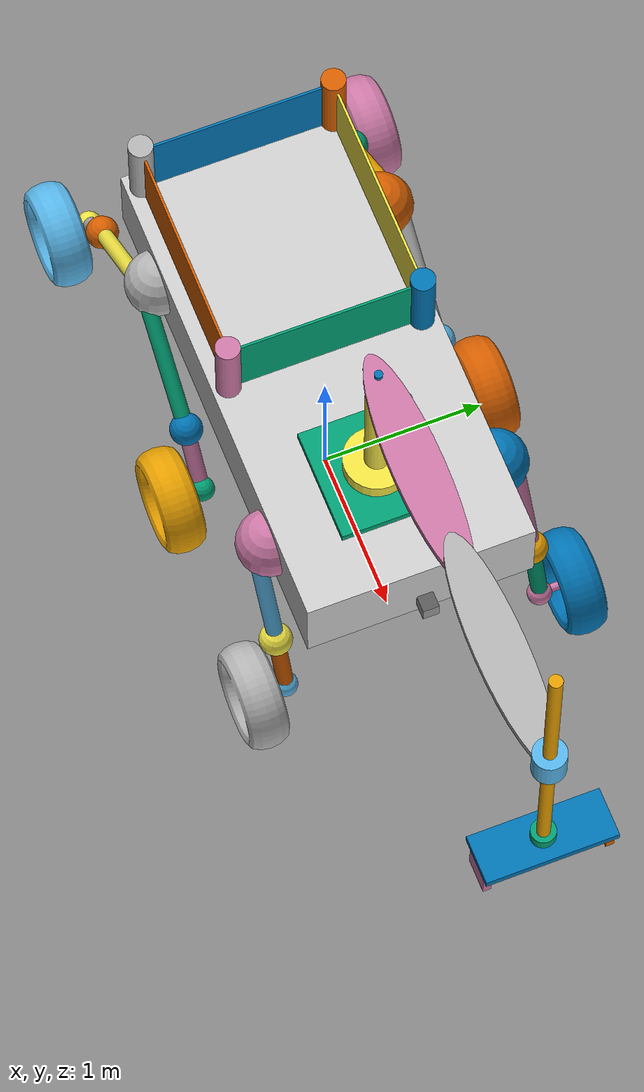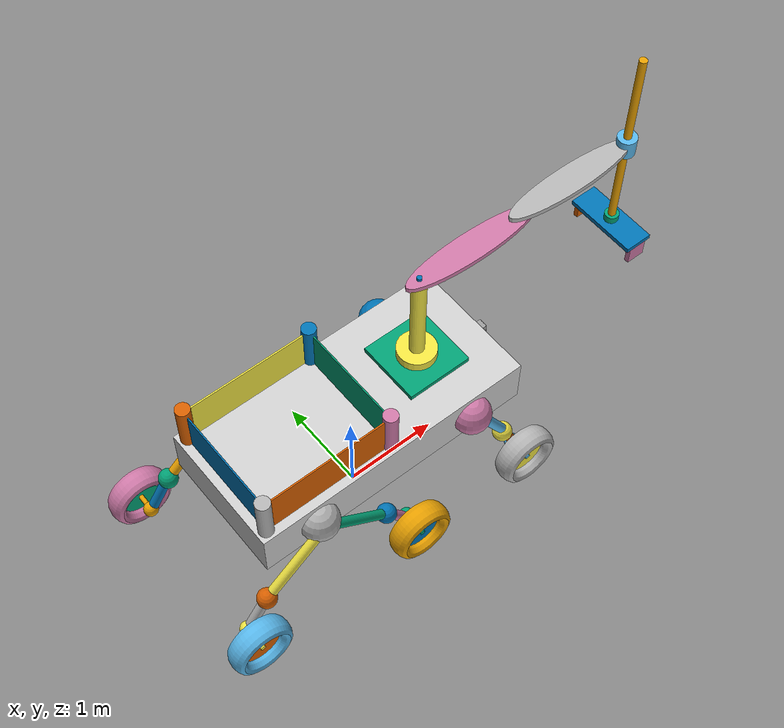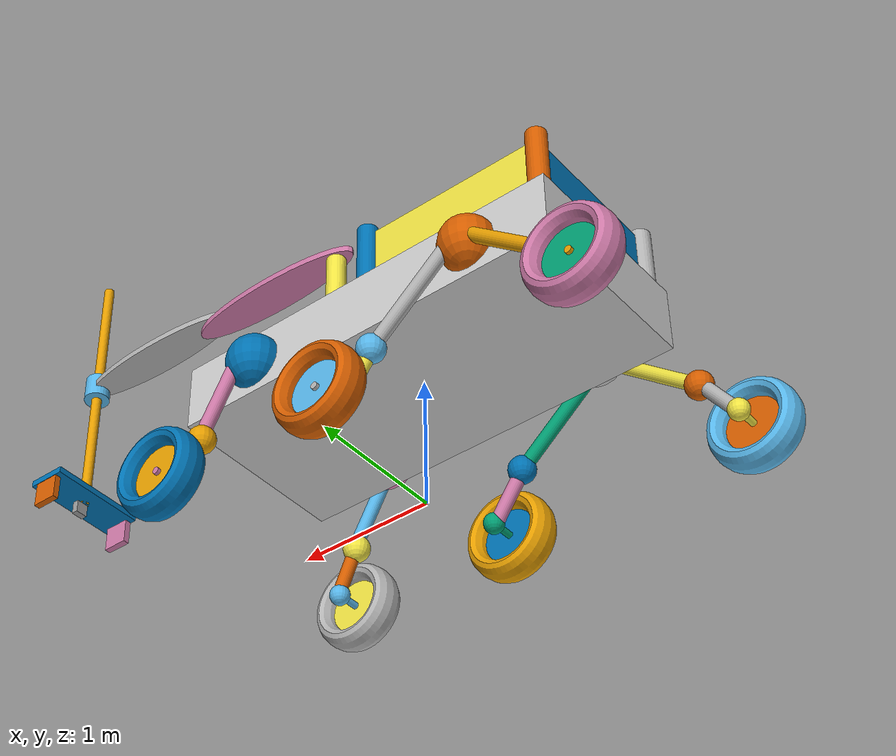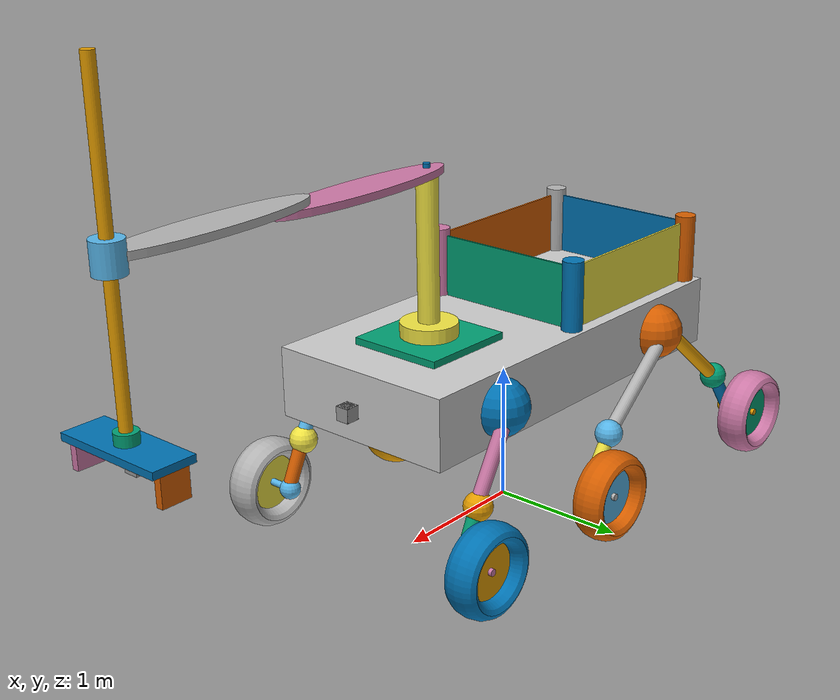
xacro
<?xml version="1.0"?>
<robot name="rover" xmlns:xacro="http://wiki.ros.org/xacro">

    <!-- includes -->
    <xacro:include filename="$(find msr_robot)/urdf/base/rover_base.urdf.xacro"/>
    <xacro:include filename="$(find msr_robot)/urdf/wheels/rover_wheel.urdf.xacro"/>
    <xacro:include filename="$(find msr_robot)/urdf/arm/scara.urdf.xacro"/>
    <xacro:include filename="$(find msr_robot)/urdf/arm/gripper.urdf.xacro"/>
    <xacro:include filename="$(find msr_robot)/urdf/sensors/camera.urdf.xacro"/>
    <xacro:include filename="$(find msr_robot)/urdf/sensors/imu_sensor.urdf.xacro"/>

    <!-- argumentos -->
    <xacro:arg name="robot_ns" default=""/>
    <xacro:arg name="prefix" default=""/>

    <!-- Robot Parts -->
    <!-- Base -->
    <xacro:rover_base/>
    <!-- Wheels -->
    <xacro:rover_wheel/>
    <!-- Arm -->
    <xacro:scara/>
    <xacro:gripper/>
    <!-- sensores -->
    <xacro:rover_cameras prefix="$(arg prefix)"/>
    <xacro:imu_sensor parent="base_link"/>

    <!-- Gazebo ROS control plugins -->
    <xacro:include filename="$(find msr_robot)/urdf/ros2_control.urdf.xacro"/>

    <xacro:arg name="config_controllers" default="$(find msr_robot)/config/rover_controllers.yaml"/>
    <xacro:arg name="update_rate" default="100"/>
    <xacro:ros2_control/>
</robot>

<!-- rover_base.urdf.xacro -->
<robot name="rover_base" xmlns:xacro="http://wiki.ros.org/xacro">
  <xacro:macro name="rover_base" params="">

    <joint name="abrazo_1_link_joint" type="fixed">
        <origin rpy="-0.43633 0.00000 0.00000" xyz="0.00000 -0.08000 -0.15000"/>
        <parent link="codo_1_link"/>
        <child link="abrazo_1_link"/>
    </joint>

    <joint name="abrazo_2_link_joint" type="fixed">
        <origin rpy="-0.61087 0.00000 0.00000" xyz="0.00000 -0.13500 -0.20000"/>
        <parent link="codo_2_link"/>
        <child link="abrazo_2_link"/>
    </joint>

    <joint name="abrazo_3_link_joint" type="fixed">
        <origin rpy="0.61087 0.00000 0.00000" xyz="0.00000 0.15000 -0.20000"/>
        <parent link="codo_3_link"/>
        <child link="abrazo_3_link"/>
    </joint>

    <joint name="abrazo_4_link_joint" type="fixed">
        <origin rpy="-0.43633 0.00000 0.00000" xyz="0.00000 -0.08000 -0.15000"/>
        <parent link="codo_4_link"/>
        <child link="abrazo_4_link"/>
    </joint>

    <joint name="abrazo_5_link_joint" type="fixed">
        <origin rpy="-0.61087 0.00000 0.00000" xyz="0.00000 -0.13500 -0.20000"/>
        <parent link="codo_5_link"/>
        <child link="abrazo_5_link"/>
    </joint>

    <joint name="abrazo_6_link_joint" type="fixed">
        <origin rpy="0.61087 0.00000 0.00000" xyz="0.00000 0.15000 -0.20000"/>
        <parent link="codo_6_link"/>
        <child link="abrazo_6_link"/>
    </joint>

    <joint name="base_footprint_to_base_link" type="fixed">
        <origin xyz="0.00000 0.00000 1.20000" rpy="0.00000 0.00000 1.5708"/>
        <parent link="base_footprint"/>
        <child link="base_link"/>
    </joint>

    <joint name="box_1_link_joint" type="fixed">
        <origin rpy="0.00000 0.00000 0.00000" xyz="0.00000 0.00000 0.47500"/>
        <parent link="base_link"/>
        <child link="box_1_link"/>
    </joint>

    <joint name="box_2_link_joint" type="fixed">
        <origin rpy="0.00000 0.00000 0.00000" xyz="0.60000 0.70000 0.47500"/>
        <parent link="base_link"/>
        <child link="box_2_link"/>
    </joint>

    <joint name="box_3_link_joint" type="fixed">
        <origin rpy="0.00000 0.00000 0.00000" xyz="0.00000 1.40000 0.47500"/>
        <parent link="base_link"/>
        <child link="box_3_link"/>
    </joint>

    <joint name="box_4_link_joint" type="fixed">
        <origin rpy="0.00000 0.00000 0.00000" xyz="-0.60000 0.70000 0.47500"/>
        <parent link="base_link"/>
        <child link="box_4_link"/>
    </joint>

    <joint name="brazo_1_link_joint" type="fixed">
        <origin rpy="-0.52360 0.00000 0.00000" xyz="0.10000 -0.20000 -0.25000"/>
        <parent link="hombro_1_link"/>
        <child link="brazo_1_link"/>
    </joint>

    <joint name="brazo_2_link_joint" type="fixed">
        <origin rpy="-0.87266 0.00000 0.00000" xyz="0.10000 -0.40000 -0.30000"/>
        <parent link="hombro_2_link"/>
        <child link="brazo_2_link"/>
    </joint>

    <joint name="brazo_3_link_joint" type="fixed">
        <origin rpy="0.87266 0.00000 0.00000" xyz="0.10000 0.40000 -0.30000"/>
        <parent link="hombro_2_link"/>
        <child link="brazo_3_link"/>
    </joint>

    <joint name="brazo_4_link_joint" type="fixed">
        <origin rpy="-0.52360 0.00000 0.00000" xyz="-0.10000 -0.20000 -0.25000"/>
        <parent link="hombro_3_link"/>
        <child link="brazo_4_link"/>
    </joint>

    <joint name="brazo_5_link_joint" type="fixed">
        <origin rpy="-0.87266 0.00000 0.00000" xyz="-0.10000 -0.40000 -0.30000"/>
        <parent link="hombro_4_link"/>
        <child link="brazo_5_link"/>
    </joint>

    <joint name="brazo_6_link_joint" type="fixed">
        <origin rpy="0.87266 0.00000 0.00000" xyz="-0.10000 0.40000 -0.30000"/>
        <parent link="hombro_4_link"/>
        <child link="brazo_6_link"/>
    </joint>

    <joint name="cil_1_link_joint" type="fixed">
        <origin rpy="0.00000 0.00000 0.00000" xyz="0.60000 0.00000 0.50000"/>
        <parent link="base_link"/>
        <child link="cil_1_link"/>
    </joint>

    <joint name="cil_2_link_joint" type="fixed">
        <origin rpy="0.00000 0.00000 0.00000" xyz="0.60000 1.40000 0.50000"/>
        <parent link="base_link"/>
        <child link="cil_2_link"/>
    </joint>

    <joint name="cil_3_link_joint" type="fixed">
        <origin rpy="0.00000 0.00000 0.00000" xyz="-0.60000 0.00000 0.50000"/>
        <parent link="base_link"/>
        <child link="cil_3_link"/>
    </joint>

    <joint name="cil_4_link_joint" type="fixed">
        <origin rpy="0.00000 0.00000 0.00000" xyz="-0.60000 1.40000 0.50000"/>
        <parent link="base_link"/>
        <child link="cil_4_link"/>
    </joint>

    <joint name="codo_1_link_joint" type="fixed">
        <origin rpy="0.52360 0.00000 0.00000" xyz="0.00000 0.02010 -0.33481"/>
        <parent link="brazo_1_link"/>
        <child link="codo_1_link"/>
    </joint>

    <joint name="codo_2_link_joint" type="fixed">
        <origin rpy="0.87266 0.00000 0.00000" xyz="0.00000 -0.00133 -0.39051"/>
        <parent link="brazo_2_link"/>
        <child link="codo_2_link"/>
    </joint>

    <joint name="codo_3_link_joint" type="fixed">
        <origin rpy="-0.87266 0.00000 0.00000" xyz="0.00000 0.00133 -0.39051"/>
        <parent link="brazo_3_link"/>
        <child link="codo_3_link"/>
    </joint>

    <joint name="codo_4_link_joint" type="fixed">
        <origin rpy="0.52360 0.00000 0.00000" xyz="0.00000 0.02010 -0.33481"/>
        <parent link="brazo_4_link"/>
        <child link="codo_4_link"/>
    </joint>

    <joint name="codo_5_link_joint" type="fixed">
        <origin rpy="0.87266 0.00000 0.00000" xyz="0.00000 -0.00133 -0.39051"/>
        <parent link="brazo_5_link"/>
        <child link="codo_5_link"/>
    </joint>

    <joint name="codo_6_link_joint" type="fixed">
        <origin rpy="-0.87266 0.00000 0.00000" xyz="0.00000 0.00133 -0.39051"/>
        <parent link="brazo_6_link"/>
        <child link="codo_6_link"/>
    </joint>

    <joint name="eje_1_link_joint" type="fixed">
        <origin rpy="-0.27581 1.57080 -0.27581" xyz="0.15000 -0.00000 0.00000"/>
        <parent link="muneca_1_link"/>
        <child link="eje_1_link"/>
    </joint>

    <joint name="eje_2_link_joint" type="fixed">
        <origin rpy="0.00000 1.57080 0.00000" xyz="0.15000 -0.00000 -0.00000"/>
        <parent link="muneca_2_link"/>
        <child link="eje_2_link"/>
    </joint>

    <joint name="eje_3_link_joint" type="fixed">
        <origin rpy="-0.00000 1.57080 0.00000" xyz="0.15000 -0.00000 -0.00000"/>
        <parent link="muneca_3_link"/>
        <child link="eje_3_link"/>
    </joint>

    <joint name="eje_4_link_joint" type="fixed">
        <origin rpy="-0.00000 0.00000 0.00000" xyz="-0.15000 -0.00000 0.00000"/>
        <parent link="muneca_4_link"/>
        <child link="eje_4_link"/>
    </joint>

    <joint name="eje_5_link_joint" type="fixed">
        <origin rpy="0.00000 0.00000 0.00000" xyz="-0.15000 -0.00000 -0.00000"/>
        <parent link="muneca_5_link"/>
        <child link="eje_5_link"/>
    </joint>

    <joint name="eje_6_link_joint" type="fixed">
        <origin rpy="-0.00000 0.00000 0.00000" xyz="-0.15000 -0.00000 -0.00000"/>
        <parent link="muneca_6_link"/>
        <child link="eje_6_link"/>
    </joint>

    <joint name="hombro_1_link_joint" type="fixed">
        <origin rpy="0.00000 0.00000 0.00000" xyz="0.70000 -0.90000 0.00000"/>
        <parent link="base_link"/>
        <child link="hombro_1_link"/>
    </joint>

    <joint name="hombro_2_link_joint" type="fixed">
        <origin rpy="0.00000 0.00000 0.00000" xyz="0.70000 0.90000 0.00000"/>
        <parent link="base_link"/>
        <child link="hombro_2_link"/>
    </joint>

    <joint name="hombro_3_link_joint" type="fixed">
        <origin rpy="0.00000 0.00000 0.00000" xyz="-0.70000 -0.90000 0.00000"/>
        <parent link="base_link"/>
        <child link="hombro_3_link"/>
    </joint>

    <joint name="hombro_4_link_joint" type="fixed">
        <origin rpy="0.00000 0.00000 0.00000" xyz="-0.70000 0.90000 0.00000"/>
        <parent link="base_link"/>
        <child link="hombro_4_link"/>
    </joint>

    <joint name="llanta_1_link_joint" type="fixed">
        <origin rpy="-0.00000 0.00000 0.00000" xyz="-0.00000 0.00000 0.05000"/>
        <parent link="eje_1_link"/>
        <child link="llanta_1_link"/>
    </joint>

    <joint name="llanta_2_link_joint" type="fixed">
        <origin rpy="0.00000 0.00000 0.00000" xyz="0.00000 -0.00000 0.05000"/>
        <parent link="eje_2_link"/>
        <child link="llanta_2_link"/>
    </joint>

    <joint name="llanta_3_link_joint" type="fixed">
        <origin rpy="-0.00000 0.00000 -0.00000" xyz="-0.00000 0.00000 0.05000"/>
        <parent link="eje_3_link"/>
        <child link="llanta_3_link"/>
    </joint>

    <joint name="llanta_4_link_joint" type="fixed">
        <origin rpy="-0.00000 1.57080 0.00000" xyz="-0.05000 0.00000 0.00000"/>
        <parent link="eje_4_link"/>
        <child link="llanta_4_link"/>
    </joint>

    <joint name="llanta_5_link_joint" type="fixed">
        <origin rpy="-0.00000 1.57080 0.00000" xyz="-0.05000 -0.00000 0.00000"/>
        <parent link="eje_5_link"/>
        <child link="llanta_5_link"/>
    </joint>

    <joint name="llanta_6_link_joint" type="fixed">
        <origin rpy="0.00000 1.57080 0.00000" xyz="-0.05000 0.00000 0.00000"/>
        <parent link="eje_6_link"/>
        <child link="llanta_6_link"/>
    </joint>

    <joint name="muneca_1_link_joint" type="fixed">
        <origin rpy="0.43633 0.00000 0.00000" xyz="-0.00000 0.01263 -0.19272"/>
        <parent link="abrazo_1_link"/>
        <child link="muneca_1_link"/>
    </joint>

    <joint name="muneca_2_link_joint" type="fixed">
        <origin rpy="0.61087 0.00000 0.00000" xyz="-0.00000 -0.01964 -0.17245"/>
        <parent link="abrazo_2_link"/>
        <child link="muneca_2_link"/>
    </joint>

    <joint name="muneca_3_link_joint" type="fixed">
        <origin rpy="-0.61087 0.00000 0.00000" xyz="-0.00000 0.00735 -0.16385"/>
        <parent link="abrazo_3_link"/>
        <child link="muneca_3_link"/>
    </joint>

    <joint name="muneca_4_link_joint" type="fixed">
        <origin rpy="0.43633 0.00000 0.00000" xyz="0.00000 0.01263 -0.19272"/>
        <parent link="abrazo_4_link"/>
        <child link="muneca_4_link"/>
    </joint>

    <joint name="muneca_5_link_joint" type="fixed">
        <origin rpy="0.61087 0.00000 0.00000" xyz="0.00000 -0.01964 -0.17245"/>
        <parent link="abrazo_5_link"/>
        <child link="muneca_5_link"/>
    </joint>

    <joint name="muneca_6_link_joint" type="fixed">
        <origin rpy="-0.61087 0.00000 0.00000" xyz="0.00000 0.00735 -0.16385"/>
        <parent link="abrazo_6_link"/>
        <child link="muneca_6_link"/>
    </joint>

    <link name="abrazo_1_link">
        <visual name="abrazo_1">
            <origin rpy="0.00000 0.00000 0.00000" xyz="-0.00000 0.00000 0.00000"/>
            <geometry>
                <cylinder radius="0.05000" length="0.40000"/>
            </geometry>
        </visual>
        <collision>
            <geometry>
                <cylinder radius="0.05000" length="0.40000"/>
            </geometry>
        </collision>
    </link>

    <link name="abrazo_2_link">
        <visual name="abrazo_2">
            <origin rpy="-0.00000 0.00000 0.00000" xyz="-0.00000 0.00000 -0.00000"/>
            <geometry>
                <cylinder radius="0.05000" length="0.40000"/>
            </geometry>
        </visual>
        <collision>
            <geometry>
                <cylinder radius="0.05000" length="0.40000"/>
            </geometry>
        </collision>
    </link>

    <link name="abrazo_3_link">
        <visual name="abrazo_3">
            <origin rpy="0.00000 0.00000 0.00000" xyz="-0.00000 -0.00000 0.00000"/>
            <geometry>
                <cylinder radius="0.05000" length="0.40000"/>
            </geometry>
        </visual>
        <collision>
            <geometry>
                <cylinder radius="0.05000" length="0.40000"/>
            </geometry>
        </collision>
    </link>

    <link name="abrazo_4_link">
        <visual name="abrazo_4">
            <origin rpy="0.00000 0.00000 0.00000" xyz="0.00000 0.00000 0.00000"/>
            <geometry>
                <cylinder radius="0.05000" length="0.40000"/>
            </geometry>
        </visual>
        <collision>
            <geometry>
                <cylinder radius="0.05000" length="0.40000"/>
            </geometry>
        </collision>
    </link>

    <link name="abrazo_5_link">
        <visual name="abrazo_5">
            <origin rpy="-0.00000 0.00000 0.00000" xyz="0.00000 0.00000 -0.00000"/>
            <geometry>
                <cylinder radius="0.05000" length="0.40000"/>
            </geometry>
        </visual>
        <collision>
            <geometry>
                <cylinder radius="0.05000" length="0.40000"/>
            </geometry>
        </collision>
    </link>

    <link name="abrazo_6_link">
        <visual name="abrazo_6">
            <origin rpy="0.00000 0.00000 0.00000" xyz="0.00000 -0.00000 0.00000"/>
            <geometry>
                <cylinder radius="0.05000" length="0.40000"/>
            </geometry>
        </visual>
        <collision>
            <geometry>
                <cylinder radius="0.05000" length="0.40000"/>
            </geometry>
        </collision>
    </link>

    <link name="base_footprint"/>

    <link name="base_link">
        <collision name="base_collision">
            <origin rpy="0.00000 0.00000 0.00000" xyz="0.00000 0.00000 0.00000"/>
            <geometry>
                <box size="1.40000 3.00000 0.50000"/>
            </geometry>
        </collision>
        <inertial>
            <inertia ixx="30.83333" ixy="0.00000" ixz="0.00000" iyy="7.36667" iyz="0.00000" izz="36.53333"/>
            <origin rpy="0.00000 0.00000 0.00000" xyz="0.00000 0.00000 0.00000"/>
            <mass value="40.00000"/>
        </inertial>
        <visual name="base">
            <origin rpy="0.00000 0.00000 0.00000" xyz="0.00000 0.00000 0.00000"/>
            <material name="Material"/>
            <geometry>
                <box size="1.40000 3.00000 0.50000"/>
            </geometry>
        </visual>
    </link>

    <link name="box_1_link">
        <visual name="box_1">
            <origin rpy="0.00000 0.00000 0.00000" xyz="0.00000 0.00000 -0.00000"/>
            <geometry>
                <box size="1.20000 0.01500 0.45000"/>
            </geometry>
        </visual>
        <collision>
            <geometry>
                <box size="1.20000 0.01500 0.45000"/>
            </geometry>
        </collision>
    </link>

    <link name="box_2_link">
        <visual name="box_2">
            <origin rpy="0.00000 0.00000 0.00000" xyz="0.00000 0.00000 -0.00000"/>
            <geometry>
                <box size="0.01500 1.30000 0.45000"/>
            </geometry>
        </visual>
        <collision>
            <geometry>
                <box size="0.01500 1.30000 0.45000"/>
            </geometry>
        </collision>
    </link>

    <link name="box_3_link">
        <visual name="box_3">
            <origin rpy="0.00000 0.00000 0.00000" xyz="0.00000 0.00000 -0.00000"/>
            <geometry>
                <box size="1.20000 0.01500 0.45000"/>
            </geometry>
        </visual>
        <collision>
            <geometry>
                <box size="1.20000 0.01500 0.45000"/>
            </geometry>
        </collision>
    </link>

    <link name="box_4_link">
        <visual name="box_4">
            <origin rpy="0.00000 0.00000 0.00000" xyz="0.00000 0.00000 -0.00000"/>
            <geometry>
                <box size="0.01500 1.30000 0.45000"/>
            </geometry>
        </visual>
        <collision>
            <geometry>
                <box size="0.01500 1.30000 0.45000"/>
            </geometry>
        </collision>
    </link>

    <link name="brazo_1_link">
        <visual name="brazo_1">
            <origin rpy="0.00000 0.00000 0.00000" xyz="0.00000 0.00000 0.00000"/>
            <geometry>
                <cylinder radius="0.05000" length="0.60000"/>
            </geometry>
        </visual>
        <collision>
            <geometry>
                <cylinder radius="0.05000" length="0.60000"/>
            </geometry>
        </collision>
    </link>

    <link name="brazo_2_link">
        <visual name="brazo_2">
            <origin rpy="-0.00000 0.00000 0.00000" xyz="0.00000 -0.00000 -0.00000"/>
            <geometry>
                <cylinder radius="0.05000" length="0.80000"/>
            </geometry>
        </visual>
        <collision>
            <geometry>
                <cylinder radius="0.05000" length="0.80000"/>
            </geometry>
        </collision>
    </link>

    <link name="brazo_3_link">
        <visual name="brazo_3">
            <origin rpy="0.00000 0.00000 0.00000" xyz="0.00000 -0.00000 0.00000"/>
            <geometry>
                <cylinder radius="0.05000" length="0.80000"/>
            </geometry>
        </visual>
        <collision>
            <geometry>
                <cylinder radius="0.05000" length="0.80000"/>
            </geometry>
        </collision>
    </link>

    <link name="brazo_4_link">
        <visual name="brazo_4">
            <origin rpy="0.00000 0.00000 0.00000" xyz="0.00000 0.00000 0.00000"/>
            <geometry>
                <cylinder radius="0.05000" length="0.60000"/>
            </geometry>
        </visual>
        <collision>
            <geometry>
                <cylinder radius="0.05000" length="0.60000"/>
            </geometry>
        </collision>
    </link>

    <link name="brazo_5_link">
        <visual name="brazo_5">
            <origin rpy="-0.00000 0.00000 0.00000" xyz="0.00000 -0.00000 -0.00000"/>
            <geometry>
                <cylinder radius="0.05000" length="0.80000"/>
            </geometry>
        </visual>
        <collision>
            <geometry>
                <cylinder radius="0.05000" length="0.80000"/>
            </geometry>
        </collision>
    </link>

    <link name="brazo_6_link">
        <visual name="brazo_6">
            <origin rpy="0.00000 0.00000 0.00000" xyz="0.00000 -0.00000 0.00000"/>
            <geometry>
                <cylinder radius="0.05000" length="0.80000"/>
            </geometry>
        </visual>
        <collision>
            <geometry>
                <cylinder radius="0.05000" length="0.80000"/>
            </geometry>
        </collision>
    </link>

    <link name="cil_1_link">
        <visual name="cil_1">
            <origin rpy="0.00000 0.00000 0.00000" xyz="0.00000 0.00000 0.00000"/>
            <geometry>
                <cylinder radius="0.07500" length="0.50000"/>
            </geometry>
        </visual>
        <collision>
            <geometry>
                <cylinder radius="0.07500" length="0.50000"/>
            </geometry>
        </collision>
    </link>

    <link name="cil_2_link">
        <visual name="cil_2">
            <origin rpy="0.00000 0.00000 0.00000" xyz="0.00000 0.00000 0.00000"/>
            <geometry>
                <cylinder radius="0.07500" length="0.50000"/>
            </geometry>
        </visual>
        <collision>
            <geometry>
                <cylinder radius="0.07500" length="0.50000"/>
            </geometry>
        </collision>
    </link>

    <link name="cil_3_link">
        <visual name="cil_3">
            <origin rpy="0.00000 0.00000 0.00000" xyz="0.00000 0.00000 0.00000"/>
            <geometry>
                <cylinder radius="0.07500" length="0.50000"/>
            </geometry>
        </visual>
        <collision>
            <geometry>
                <cylinder radius="0.07500" length="0.50000"/>
            </geometry>
        </collision>
    </link>

    <link name="cil_4_link">
        <visual name="cil_4">
            <origin rpy="0.00000 0.00000 0.00000" xyz="0.00000 0.00000 0.00000"/>
            <geometry>
                <cylinder radius="0.07500" length="0.50000"/>
            </geometry>
        </visual>
        <collision>
            <geometry>
                <cylinder radius="0.07500" length="0.50000"/>
            </geometry>
        </collision>
    </link>

    <link name="codo_1_link">
        <visual name="codo_1">
            <origin rpy="0.00000 0.00000 0.00000" xyz="0.00000 -0.00000 0.00000"/>
            <geometry>
                <sphere radius="0.10000"/>
            </geometry>
        </visual>
        <collision>
            <geometry>
                <sphere radius="0.10000"/>
            </geometry>
        </collision>
    </link>

    <link name="codo_2_link">
        <visual name="codo_2">
            <origin rpy="-0.00000 0.00000 0.00000" xyz="0.00000 -0.00000 -0.00000"/>
            <geometry>
                <sphere radius="0.10000"/>
            </geometry>
        </visual>
        <collision>
            <geometry>
                <sphere radius="0.10000"/>
            </geometry>
        </collision>
    </link>

    <link name="codo_3_link">
        <visual name="codo_3">
            <origin rpy="0.00000 0.00000 0.00000" xyz="0.00000 -0.00000 -0.00000"/>
            <geometry>
                <sphere radius="0.10000"/>
            </geometry>
        </visual>
        <collision>
            <geometry>
                <sphere radius="0.10000"/>
            </geometry>
        </collision>
    </link>

    <link name="codo_4_link">
        <visual name="codo_4">
            <origin rpy="0.00000 0.00000 0.00000" xyz="0.00000 -0.00000 0.00000"/>
            <geometry>
                <sphere radius="0.10000"/>
            </geometry>
        </visual>
        <collision>
            <geometry>
                <sphere radius="0.10000"/>
            </geometry>
        </collision>
    </link>

    <link name="codo_5_link">
        <visual name="codo_5">
            <origin rpy="-0.00000 0.00000 0.00000" xyz="0.00000 -0.00000 -0.00000"/>
            <geometry>
                <sphere radius="0.10000"/>
            </geometry>
        </visual>
        <collision>
            <geometry>
                <sphere radius="0.10000"/>
            </geometry>
        </collision>
    </link>

    <link name="codo_6_link">
        <visual name="codo_6">
            <origin rpy="0.00000 0.00000 0.00000" xyz="0.00000 -0.00000 -0.00000"/>
            <geometry>
                <sphere radius="0.10000"/>
            </geometry>
        </visual>
        <collision>
            <geometry>
                <sphere radius="0.10000"/>
            </geometry>
        </collision>
    </link>

    <link name="eje_1_link">
        <visual name="eje_1">
            <origin rpy="-0.00000 -0.00000 -0.00000" xyz="0.00000 0.00000 -0.00000"/>
            <geometry>
                <cylinder radius="0.02500" length="0.20000"/>
            </geometry>
        </visual>
        <collision>
            <geometry>
                <cylinder radius="0.02500" length="0.20000"/>
            </geometry>
        </collision>
    </link>

    <link name="eje_2_link">
        <visual name="eje_2">
            <origin rpy="-0.00000 -0.00000 -0.00000" xyz="0.00000 -0.00000 0.00000"/>
            <geometry>
                <cylinder radius="0.02500" length="0.20000"/>
            </geometry>
        </visual>
        <collision>
            <geometry>
                <cylinder radius="0.02500" length="0.20000"/>
            </geometry>
        </collision>
    </link>

    <link name="eje_3_link">
        <visual name="eje_3">
            <origin rpy="0.00000 -0.00000 0.00000" xyz="0.00000 0.00000 0.00000"/>
            <geometry>
                <cylinder radius="0.02500" length="0.20000"/>
            </geometry>
        </visual>
        <collision>
            <geometry>
                <cylinder radius="0.02500" length="0.20000"/>
            </geometry>
        </collision>
    </link>

    <link name="eje_4_link">
        <visual name="eje_4">
            <origin rpy="-0.00000 1.57080 0.00000" xyz="0.00000 0.00000 -0.00000"/>
            <geometry>
                <cylinder radius="0.02500" length="0.20000"/>
            </geometry>
        </visual>
        <collision>
            <geometry>
                <cylinder radius="0.02500" length="0.20000"/>
            </geometry>
        </collision>
    </link>

    <link name="eje_5_link">
        <visual name="eje_5">
            <origin rpy="-0.27581 1.57080 -0.27581" xyz="-0.00000 -0.00000 -0.00000"/>
            <geometry>
                <cylinder radius="0.02500" length="0.20000"/>
            </geometry>
        </visual>
        <collision>
            <geometry>
                <cylinder radius="0.02500" length="0.20000"/>
            </geometry>
        </collision>
    </link>

    <link name="eje_6_link">
        <visual name="eje_6">
            <origin rpy="0.27581 1.57080 0.27581" xyz="-0.00000 0.00000 -0.00000"/>
            <geometry>
                <cylinder radius="0.02500" length="0.20000"/>
            </geometry>
        </visual>
        <collision>
            <geometry>
                <cylinder radius="0.02500" length="0.20000"/>
            </geometry>
        </collision>
    </link>

    <link name="hombro_1_link">
        <collision name="hombro_1_collision">
            <origin rpy="0.00000 0.00000 0.00000" xyz="0.00000 -0.00000 0.00000"/>
            <geometry>
                <sphere radius="0.20000"/>
            </geometry>
        </collision>
        <visual name="hombro_1">
            <origin rpy="0.00000 0.00000 0.00000" xyz="0.00000 -0.00000 0.00000"/>
            <geometry>
                <sphere radius="0.20000"/>
            </geometry>
        </visual>
    </link>

    <link name="hombro_2_link">
        <collision name="hombro_2_collision">
            <origin rpy="0.00000 0.00000 0.00000" xyz="0.00000 0.00000 0.00000"/>
            <geometry>
                <sphere radius="0.20000"/>
            </geometry>
        </collision>
        <visual name="hombro_2">
            <origin rpy="0.00000 0.00000 0.00000" xyz="0.00000 0.00000 0.00000"/>
            <geometry>
                <sphere radius="0.20000"/>
            </geometry>
        </visual>
    </link>

    <link name="hombro_3_link">
        <collision name="hombro_3_collision">
            <origin rpy="0.00000 0.00000 0.00000" xyz="0.00000 -0.00000 0.00000"/>
            <geometry>
                <sphere radius="0.20000"/>
            </geometry>
        </collision>
        <visual name="hombro_3">
            <origin rpy="0.00000 0.00000 0.00000" xyz="0.00000 -0.00000 0.00000"/>
            <geometry>
                <sphere radius="0.20000"/>
            </geometry>
        </visual>
    </link>

    <link name="hombro_4_link">
        <collision name="hombro_4_collision">
            <origin rpy="0.00000 0.00000 0.00000" xyz="0.00000 0.00000 0.00000"/>
            <geometry>
                <sphere radius="0.20000"/>
            </geometry>
        </collision>
        <visual name="hombro_4">
            <origin rpy="0.00000 0.00000 0.00000" xyz="0.00000 0.00000 0.00000"/>
            <geometry>
                <sphere radius="0.20000"/>
            </geometry>
        </visual>
    </link>

    <link name="llanta_1_link">
        <visual name="llanta_1">
            <origin rpy="-0.00000 -0.00000 -0.00000" xyz="0.00000 0.00000 0.00000"/>
            <geometry>
                <cylinder radius="0.25000" length="0.05000"/>
            </geometry>
        </visual>
        <collision>
            <geometry>
                <cylinder radius="0.25000" length="0.05000"/>
            </geometry>
        </collision>
    </link>

    <link name="llanta_2_link">
        <visual name="llanta_2">
            <origin rpy="-0.00000 0.00000 -0.00000" xyz="0.00000 -0.00000 0.00000"/>
            <geometry>
                <cylinder radius="0.25000" length="0.05000"/>
            </geometry>
        </visual>
        <collision>
            <geometry>
                <cylinder radius="0.25000" length="0.05000"/>
            </geometry>
        </collision>
    </link>

    <link name="llanta_3_link">
        <visual name="llanta_3">
            <origin rpy="0.00000 0.00000 0.00000" xyz="0.00000 -0.00000 0.00000"/>
            <geometry>
                <cylinder radius="0.25000" length="0.05000"/>
            </geometry>
        </visual>
        <collision>
            <geometry>
                <cylinder radius="0.25000" length="0.05000"/>
            </geometry>
        </collision>
    </link>

    <link name="llanta_4_link">
        <visual name="llanta_4">
            <origin rpy="-0.00000 0.00000 -0.00000" xyz="0.00000 0.00000 -0.00000"/>
            <geometry>
                <cylinder radius="0.25000" length="0.05000"/>
            </geometry>
        </visual>
        <collision>
            <geometry>
                <cylinder radius="0.25000" length="0.05000"/>
            </geometry>
        </collision>
    </link>

    <link name="llanta_5_link">
        <visual name="llanta_5">
            <origin rpy="-0.00000 0.00000 -0.00000" xyz="0.00000 -0.00000 -0.00000"/>
            <geometry>
                <cylinder radius="0.25000" length="0.05000"/>
            </geometry>
        </visual>
        <collision>
            <geometry>
                <cylinder radius="0.25000" length="0.05000"/>
            </geometry>
        </collision>
    </link>

    <link name="llanta_6_link">
        <visual name="llanta_6">
            <origin rpy="0.00000 0.00000 0.00000" xyz="0.00000 -0.00000 -0.00000"/>
            <geometry>
                <cylinder radius="0.25000" length="0.05000"/>
            </geometry>
        </visual>
        <collision>
            <geometry>
                <cylinder radius="0.25000" length="0.05000"/>
            </geometry>
        </collision>
    </link>

    <link name="muneca_1_link">
        <visual name="muneca_1">
            <origin rpy="-0.00000 0.00000 0.00000" xyz="0.00000 0.00000 -0.00000"/>
            <geometry>
                <sphere radius="0.07500"/>
            </geometry>
        </visual>
        <collision>
            <geometry>
                <sphere radius="0.07500"/>
            </geometry>
        </collision>
    </link>

    <link name="muneca_2_link">
        <visual name="muneca_2">
            <origin rpy="0.00000 0.00000 0.00000" xyz="0.00000 -0.00000 -0.00000"/>
            <geometry>
                <sphere radius="0.07500"/>
            </geometry>
        </visual>
        <collision>
            <geometry>
                <sphere radius="0.07500"/>
            </geometry>
        </collision>
    </link>

    <link name="muneca_3_link">
        <visual name="muneca_3">
            <origin rpy="-0.00000 0.00000 0.00000" xyz="0.00000 -0.00000 -0.00000"/>
            <geometry>
                <sphere radius="0.07500"/>
            </geometry>
        </visual>
        <collision>
            <geometry>
                <sphere radius="0.07500"/>
            </geometry>
        </collision>
    </link>

    <link name="muneca_4_link">
        <visual name="muneca_4">
            <origin rpy="-0.00000 0.00000 0.00000" xyz="-0.00000 0.00000 -0.00000"/>
            <geometry>
                <sphere radius="0.07500"/>
            </geometry>
        </visual>
        <collision>
            <geometry>
                <sphere radius="0.07500"/>
            </geometry>
        </collision>
    </link>

    <link name="muneca_5_link">
        <visual name="muneca_5">
            <origin rpy="0.00000 0.00000 0.00000" xyz="-0.00000 -0.00000 -0.00000"/>
            <geometry>
                <sphere radius="0.07500"/>
            </geometry>
        </visual>
        <collision>
            <geometry>
                <sphere radius="0.07500"/>
            </geometry>
        </collision>
    </link>

    <link name="muneca_6_link">
        <visual name="muneca_6">
            <origin rpy="-0.00000 0.00000 0.00000" xyz="-0.00000 -0.00000 -0.00000"/>
            <geometry>
                <sphere radius="0.07500"/>
            </geometry>
        </visual>
        <collision>
            <geometry>
                <sphere radius="0.07500"/>
            </geometry>
        </collision>
    </link>

  </xacro:macro>
</robot>

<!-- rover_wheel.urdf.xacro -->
<robot name="rover_wheel" xmlns:xacro="http://wiki.ros.org/xacro">

  <xacro:macro name="rover_wheel" params="">

    <joint name="wheel_1" type="continuous">
      <limit lower="0" upper="0" effort="500.00000" velocity="0.00000"/>
      <origin rpy="0.00000 0.00000 0.00000" xyz="-0.00000 0.00000 0.05000"/>
      <parent link="eje_1_link"/>
      <child link="wheel_1_link"/>
      <axis xyz="0.00000 0.00000 1.00000"/>
    </joint>

    <joint name="wheel_2" type="continuous">
      <limit lower="0" upper="0" effort="500.00000" velocity="0.00000"/>
      <origin rpy="0.00000 0.00000 0.00000" xyz="0.00000 -0.00000 0.05000"/>
      <parent link="eje_2_link"/>
      <child link="wheel_2_link"/>
      <axis xyz="0.00000 0.00000 1.00000"/>
    </joint>

    <joint name="wheel_3" type="continuous">
      <limit lower="0" upper="0" effort="500.00000" velocity="0.00000"/>
      <origin rpy="-0.00000 0.00000 -0.00000" xyz="-0.00000 0.00000 0.05000"/>
      <parent link="eje_3_link"/>
      <child link="wheel_3_link"/>
      <axis xyz="0.00000 0.00000 1.00000"/>
    </joint>

    <joint name="wheel_4" type="continuous">
      <limit lower="0" upper="0" effort="500.00000" velocity="0.00000"/>
      <origin rpy="-0.00000 1.57080 0.00000" xyz="-0.05000 0.00000 0.00000"/>
      <parent link="eje_4_link"/>
      <child link="wheel_4_link"/>
      <axis xyz="0.00000 0.00000 1.00000"/>
    </joint>

    <joint name="wheel_5" type="continuous">
      <limit lower="0" upper="0" effort="500.00000" velocity="0.00000"/>
      <origin rpy="-0.00000 1.57080 0.00000" xyz="-0.05000 -0.00000 0.00000"/>
      <parent link="eje_5_link"/>
      <child link="wheel_5_link"/>
      <axis xyz="0.00000 0.00000 1.00000"/>
    </joint>

    <joint name="wheel_6" type="continuous">
      <limit lower="0" upper="0" effort="500.00000" velocity="0.00000"/>
      <origin rpy="0.00000 1.57080 0.00000" xyz="-0.05000 0.00000 0.00000"/>
      <parent link="eje_6_link"/>
      <child link="wheel_6_link"/>
      <axis xyz="0.00000 0.00000 1.00000"/>
    </joint>

    <link name="wheel_1_link">
      <collision name="wheel_1_collision">
        <origin rpy="-0.00000 0.00000 -0.00000" xyz="0.00000 0.00000 0.00000"/>
        <geometry>
          <mesh filename="file://$(find msr_robot)/meshes/dae/Torus.002.dae" scale="0.26000 0.26000 0.50000"/>
        </geometry>
      </collision>
      <inertial>
        <inertia ixx="0.19823" ixy="0.00000" ixz="-0.00000" iyy="0.11142" iyz="-0.00000" izz="0.11142"/>
        <origin rpy="0.00000 0.00000 0.00000" xyz="0.00000 0.00000 0.00000"/>
        <mass value="4.00000"/>
      </inertial>
      <visual name="wheel_1">
        <origin rpy="-0.00000 0.00000 -0.00000" xyz="0.00000 0.00000 0.00000"/>
        <geometry>
          <mesh filename="file://$(find msr_robot)/meshes/dae/Torus.002.dae" scale="0.26000 0.26000 0.50000"/>
        </geometry>
      </visual>
    </link>

    <link name="wheel_2_link">
      <collision name="wheel_2_collision">
        <origin rpy="-0.00000 0.00000 -0.00000" xyz="0.00000 -0.00000 0.00000"/>
        <geometry>
          <mesh filename="file://$(find msr_robot)/meshes/dae/Torus.dae" scale="0.26000 0.26000 0.50000"/>
        </geometry>
      </collision>
      <inertial>
        <inertia ixx="0.19823" ixy="0.00000" ixz="-0.00000" iyy="0.11142" iyz="-0.00000" izz="0.11142"/>
        <origin rpy="0.00000 0.00000 0.00000" xyz="0.00000 -0.00000 0.00000"/>
        <mass value="4.00000"/>
      </inertial>
      <visual name="wheel_2">
        <origin rpy="-0.00000 -0.00000 -0.00000" xyz="0.00000 -0.00000 0.00000"/>
        <geometry>
          <mesh filename="file://$(find msr_robot)/meshes/dae/Torus.dae" scale="0.26000 0.26000 0.50000"/>
        </geometry>
      </visual>
    </link>

    <link name="wheel_3_link">
      <collision name="wheel_3_collision">
        <origin rpy="0.00000 0.00000 0.00000" xyz="0.00000 -0.00000 0.00000"/>
        <geometry>
          <mesh filename="file://$(find msr_robot)/meshes/dae/Torus.001.dae" scale="0.26000 0.26000 0.50000"/>
        </geometry>
      </collision>
      <inertial>
        <inertia ixx="0.19823" ixy="-0.00000" ixz="-0.00000" iyy="0.11142" iyz="-0.00000" izz="0.11142"/>
        <origin rpy="0.00000 0.00000 0.00000" xyz="0.00000 -0.00000 0.00000"/>
        <mass value="4.00000"/>
      </inertial>
      <visual name="wheel_3">
        <origin rpy="0.00000 -0.00000 0.00000" xyz="0.00000 -0.00000 0.00000"/>
        <geometry>
          <mesh filename="file://$(find msr_robot)/meshes/dae/Torus.001.dae" scale="0.26000 0.26000 0.50000"/>
        </geometry>
      </visual>
    </link>

    <link name="wheel_4_link">
      <collision name="wheel_4_collision">
        <origin rpy="-0.00000 0.00000 -0.00000" xyz="0.00000 0.00000 -0.00000"/>
        <geometry>
          <mesh filename="file://$(find msr_robot)/meshes/dae/Torus.005.dae" scale="0.26000 0.26000 0.50000"/>
        </geometry>
      </collision>
      <inertial>
        <inertia ixx="0.19823" ixy="0.00000" ixz="-0.00000" iyy="0.11142" iyz="-0.00000" izz="0.11142"/>
        <origin rpy="0.00000 0.00000 0.00000" xyz="0.00000 0.00000 0.00000"/>
        <mass value="4.00000"/>
      </inertial>
      <visual name="wheel_4">
        <origin rpy="-0.00000 0.00000 -0.00000" xyz="0.00000 0.00000 -0.00000"/>
        <geometry>
          <mesh filename="file://$(find msr_robot)/meshes/dae/Torus.005.dae" scale="0.26000 0.26000 0.50000"/>
        </geometry>
      </visual>
    </link>

    <link name="wheel_5_link">
      <collision name="wheel_5_collision">
        <origin rpy="-0.00000 0.00000 -0.00000" xyz="0.00000 -0.00000 -0.00000"/>
        <geometry>
          <mesh filename="file://$(find msr_robot)/meshes/dae/Torus.003.dae" scale="0.26000 0.26000 0.50000"/>
        </geometry>
      </collision>
      <inertial>
        <inertia ixx="0.19823" ixy="0.00000" ixz="-0.00000" iyy="0.11142" iyz="-0.00000" izz="0.11142"/>
        <origin rpy="0.00000 0.00000 0.00000" xyz="0.00000 -0.00000 -0.00000"/>
        <mass value="4.00000"/>
      </inertial>
      <visual name="wheel_5">
        <origin rpy="-0.00000 0.00000 -0.00000" xyz="0.00000 -0.00000 -0.00000"/>
        <geometry>
          <mesh filename="file://$(find msr_robot)/meshes/dae/Torus.003.dae" scale="0.26000 0.26000 0.50000"/>
        </geometry>
      </visual>
    </link>

    <link name="wheel_6_link">
      <collision name="wheel_6_collision">
        <origin rpy="0.00000 0.00000 0.00000" xyz="0.00000 -0.00000 -0.00000"/>
        <geometry>
          <mesh filename="file://$(find msr_robot)/meshes/dae/Torus.004.dae" scale="0.26000 0.26000 0.50000"/>
        </geometry>
      </collision>
      <inertial>
        <inertia ixx="0.19823" ixy="-0.00000" ixz="-0.00000" iyy="0.11142" iyz="-0.00000" izz="0.11142"/>
        <origin rpy="0.00000 0.00000 0.00000" xyz="0.00000 -0.00000 -0.00000"/>
        <mass value="4.00000"/>
      </inertial>
      <visual name="wheel_6">
        <origin rpy="0.00000 0.00000 0.00000" xyz="0.00000 -0.00000 -0.00000"/>
        <geometry>
          <mesh filename="file://$(find msr_robot)/meshes/dae/Torus.004.dae" scale="0.26000 0.26000 0.50000"/>
        </geometry>
      </visual>
    </link>
    <material name="Material">
      <color rgba="0.80000 0.80000 0.80000 1.00000"/>
    </material>

  </xacro:macro>

</robot>

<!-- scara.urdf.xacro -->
<robot name="scara" xmlns:xacro="http://wiki.ros.org/xacro">
  <xacro:macro name="scara" params="">

    <!-- Joints -->
    <joint name="A1_eje_1" type="revolute">
      <limit lower="-4.0" upper="4.0" effort="500.0" velocity="1.0"/>
      <origin rpy="0 0 0" xyz="0 0 0.55"/>
      <parent link="viga_brazo_link"/>
      <child link="eje_brazo_1_link"/>
      <axis xyz="0 0 1"/>
    </joint>

    <joint name="A3_eje_3" type="prismatic">
      <limit lower="0.15" upper="2.15" effort="500.0" velocity="1.0"/>
      <origin rpy="0 0 0" xyz="0 0 -1.175"/>
      <parent link="soporte_movil_link"/>
      <child link="movil_link"/>
      <axis xyz="0 0 1"/>
    </joint>

    <joint name="A4_eje_4" type="revolute">
      <limit lower="-4.0" upper="4.0" effort="500.0" velocity="1.0"/>
      <origin rpy="0 0 0" xyz="0 0 -1.025"/>
      <parent link="movil_link"/>
      <child link="soporte_pinza_link"/>
      <axis xyz="0 0 1"/>
    </joint>

    <joint name="A_soporte_brazo_link_joint" type="fixed">
      <origin rpy="0 0 0" xyz="0 -0.8 0.275"/>
      <parent link="base_link"/>
      <child link="A_soporte_brazo_link"/>
    </joint>

    <joint name="base_brazo_link_joint" type="fixed">
      <origin rpy="0 0 0" xyz="0 0 0.075"/>
      <parent link="A_soporte_brazo_link"/>
      <child link="base_brazo_link"/>
    </joint>

    <joint name="A2_eje_2" type="revolute">
      <limit lower="-2.75" upper="2.75" effort="500.0" velocity="1.0"/>
      <origin rpy="0 0 0" xyz="0 -0.6 0.025"/>
      <parent link="l1_link"/>
      <child link="eje_brazo_2_link"/>
      <axis xyz="0 0 1"/>
    </joint>

    <joint name="l1_link_joint" type="fixed">
      <origin rpy="0 0 0" xyz="0 -0.6 -0.025"/>
      <parent link="eje_brazo_1_link"/>
      <child link="l1_link"/>
    </joint>

    <joint name="l2_link_joint" type="fixed">
      <origin rpy="0 0 0" xyz="0 -0.6 0.025"/>
      <parent link="eje_brazo_2_link"/>
      <child link="l2_link"/>
    </joint>

    <joint name="soporte_movil_link_joint" type="fixed">
      <origin rpy="0 0 0" xyz="0 -0.7 0"/>
      <parent link="l2_link"/>
      <child link="soporte_movil_link"/>
    </joint>

    <joint name="viga_brazo_link_joint" type="fixed">
      <origin rpy="0 0 0" xyz="0 0 0.55"/>
      <parent link="base_brazo_link"/>
      <child link="viga_brazo_link"/>
    </joint>

    <!-- Links -->
    <!-- A_soporte_brazo_link -->
    <link name="A_soporte_brazo_link">
      <visual>
        <origin rpy="0 0 0" xyz="0 0 0"/>
        <geometry><box size="0.7 0.7 0.05"/></geometry>
      </visual>
      <collision>
        <geometry><box size="0.7 0.7 0.05"/></geometry>
      </collision>
    </link>

    <link name="base_brazo_link">
      <visual>
        <origin rpy="0 0 0" xyz="0 0 0"/>
        <geometry><cylinder radius="0.2" length="0.1"/></geometry>
      </visual>
      <collision>
        <geometry><cylinder radius="0.2" length="0.1"/></geometry>
      </collision>
    </link>

    <link name="eje_brazo_1_link">
      <collision><origin xyz="0 0 0" rpy="0 0 0"/><geometry><cylinder radius="0.025" length="0.06"/></geometry></collision>
      <visual><origin xyz="0 0 0" rpy="0 0 0"/><geometry><cylinder radius="0.025" length="0.06"/></geometry></visual>
      <inertial><mass value="0.5"/><origin xyz="0 0 0" rpy="0 0 0"/>
        <inertia ixx="0.00023" ixy="0" ixz="0" iyy="0.00023" iyz="0" izz="0.00016"/>
      </inertial>
    </link>

    <link name="eje_brazo_2_link">
      <collision><origin xyz="0 0 0" rpy="0 0 0"/><geometry><cylinder radius="0.025" length="0.15"/></geometry></collision>
      <visual><origin xyz="0 0 0" rpy="0 0 0"/><geometry><cylinder radius="0.025" length="0.06"/></geometry></visual>
      <inertial><mass value="0.5"/><origin xyz="0 0 0" rpy="0 0 0"/>
        <inertia ixx="0.00023" ixy="0" ixz="0" iyy="0.00023" iyz="0" izz="0.00016"/>
      </inertial>
    </link>

    <link name="l1_link">
      <collision><origin rpy="0 0 0" xyz="0 0 0"/><geometry><cylinder radius="0.15" length="0.05"/></geometry></collision>
      <visual><origin rpy="0 0 0" xyz="0 0 0"/>
        <geometry><mesh filename="file://$(find msr_robot)/meshes/dae/Cylinder.031.dae" scale="0.15 0.75 0.025"/></geometry>
      </visual>
      <inertial><mass value="3.0"/><origin xyz="0 0 0" rpy="0 0 0"/>
        <inertia ixx="0.0175" ixy="0" ixz="0" iyy="0.0175" iyz="0" izz="0.03375"/>
      </inertial>
    </link>

    <link name="l2_link">
      <collision><origin rpy="0 0 0" xyz="0 0 0"/><geometry><cylinder radius="0.15" length="0.05"/></geometry></collision>
      <visual><origin rpy="0 0 0" xyz="0 0 0"/>
        <geometry><mesh filename="file://$(find msr_robot)/meshes/dae/Cylinder.035.dae" scale="0.15 0.75 0.025"/></geometry>
      </visual>
      <inertial><mass value="3.0"/><origin xyz="0 0 0" rpy="0 0 0"/>
        <inertia ixx="0.4198" ixy="0" ixz="0" iyy="0.01739" iyz="0" izz="0.43594"/>
      </inertial>
    </link>

    <link name="movil_link">
      <collision><origin rpy="0 0 0" xyz="0 0 0"/><geometry><cylinder radius="0.04" length="2.2"/></geometry></collision>
      <visual><origin rpy="0 0 0" xyz="0 0 0"/><geometry><cylinder radius="0.04" length="2.2"/></geometry></visual>
      <inertial><mass value="2.0"/><origin xyz="0 0 0" rpy="0 0 0"/>
        <inertia ixx="0.66747" ixy="0" ixz="0" iyy="0.66747" iyz="0" izz="0.0016"/>
      </inertial>
    </link>

    <link name="soporte_movil_link">
      <collision><origin rpy="0 0 0" xyz="0 0 0"/><geometry><cylinder radius="0.1" length="0.2"/></geometry></collision>
      <visual><origin rpy="0 0 0" xyz="0 0 0"/><geometry><cylinder radius="0.1" length="0.2"/></geometry></visual>
      <inertial><mass value="2.0"/><origin xyz="0 0 0" rpy="0 0 0"/>
        <inertia ixx="0.01167" ixy="0" ixz="0" iyy="0.01167" iyz="0" izz="0.01"/>
      </inertial>
    </link>

    <link name="soporte_pinza_link">
      <collision><origin rpy="0 0 0" xyz="0 0 0"/><geometry><cylinder radius="0.075" length="0.1"/></geometry></collision>
      <visual><origin rpy="0 0 0" xyz="0 0 0"/><geometry><cylinder radius="0.075" length="0.1"/></geometry></visual>
      <inertial><mass value="0.5"/><origin xyz="0 0 0" rpy="0 0 0"/>
        <inertia ixx="0.00112" ixy="0" ixz="0" iyy="0.00112" iyz="0" izz="0.00141"/>
      </inertial>
    </link>

    <link name="viga_brazo_link">
      <collision><origin rpy="0 0 0" xyz="0 0 0"/><geometry><cylinder radius="0.075" length="1.0"/></geometry></collision>
      <visual><origin rpy="0 0 0" xyz="0 0 0"/><geometry><cylinder radius="0.075" length="1.0"/></geometry></visual>
      <inertial><mass value="8.0"/><origin xyz="0 0 0" rpy="0 0 0"/>
        <inertia ixx="0.67792" ixy="0" ixz="0" iyy="0.67792" iyz="0" izz="0.0225"/>
      </inertial>
    </link>

  </xacro:macro>
</robot>

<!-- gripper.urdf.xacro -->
<robot name="gripper" xmlns:xacro="http://wiki.ros.org/xacro">

  <xacro:macro name="gripper" params="">

    <!-- Base de la pinza -->
    <link name="base_pinza_link">
      <collision name="base_pinza_collision">
        <origin rpy="0 0 0" xyz="0 0 0"/>
        <geometry>
          <box size="0.8 0.3 0.05"/>
        </geometry>
      </collision>
      <visual name="base_pinza">
        <origin rpy="0 0 0" xyz="0 0 0"/>
        <geometry>
          <box size="0.8 0.3 0.05"/>
        </geometry>
      </visual>
      <inertial>
        <mass value="1.0"/>
        <origin xyz="0 0 0" rpy="0 0 0"/>
        <inertia ixx="0.00771" ixy="0" ixz="0" iyy="0.05354" iyz="0" izz="0.06083"/>
      </inertial>
    </link>

    <joint name="base_pinza_link_joint" type="fixed">
      <origin rpy="0.00000 0.00000 0.00000" xyz="0.00000 0.00000 -0.05000"/>
      <parent link="soporte_pinza_link"/>
      <child link="base_pinza_link"/>
    </joint>

    <!-- Pinza 1 -->
    <joint name="5_pinza" type="prismatic">
      <limit lower="0.0" upper="0.24" effort="500.0" velocity="1.0"/>
      <origin rpy="3.14159 0 3.14159" xyz="0.37 0 -0.12"/>
      <parent link="base_pinza_link"/>
      <child link="pinza_1_link"/>
      <axis xyz="1 0 0"/>
    </joint>

    <link name="pinza_1_link">
      <collision name="pinza_1_collision">
        <origin rpy="0 0 0" xyz="0 0 0"/>
        <geometry>
          <box size="0.05 0.2 0.2"/>
        </geometry>
      </collision>
      <visual name="pinza_1">
        <origin rpy="0 0 0" xyz="0 0 0"/>
        <geometry>
          <box size="0.05 0.2 0.2"/>
        </geometry>
      </visual>
      <inertial>
        <mass value="0.5"/>
        <origin xyz="0 0 0" rpy="0 0 0"/>
        <inertia ixx="0.00333" ixy="0" ixz="0" iyy="0.00177" iyz="0" izz="0.00177"/>
      </inertial>
    </link>

    <!-- Pinza 2 -->
    <joint name="6_pinza" type="prismatic">
      <limit lower="0.0" upper="0.24" effort="500.0" velocity="1.0"/>
      <origin rpy="0 0 0" xyz="-0.37 0 -0.12"/>
      <parent link="base_pinza_link"/>
      <child link="pinza_2_link"/>
      <axis xyz="1 0 0"/>
    </joint>

    <link name="pinza_2_link">
      <collision name="pinza_2_collision">
        <origin rpy="0 0 0" xyz="0 0 0"/>
        <geometry>
          <box size="0.05 0.2 0.2"/>
        </geometry>
      </collision>
      <visual name="pinza_2">
        <origin rpy="0 0 0" xyz="0 0 0"/>
        <geometry>
          <box size="0.05 0.2 0.2"/>
        </geometry>
      </visual>
      <inertial>
        <mass value="0.5"/>
        <origin xyz="0 0 0" rpy="0 0 0"/>
        <inertia ixx="0.00333" ixy="0" ixz="0" iyy="0.00177" iyz="0" izz="0.00177"/>
      </inertial>
    </link>

  </xacro:macro>

</robot>

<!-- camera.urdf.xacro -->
<robot xmlns:xacro="http://wiki.ros.org/xacro">

    <xacro:property name="PI" value="3.141592653589"/>

    <link name="camera_base_link">
        <visual name="base_camera_front">
            <origin rpy="-0.00000 0.00000 0.00000" xyz="0.00000 0.00000 0.00000"/>
            <geometry>
                <box size="0.1 0.1 0.1"/>
            </geometry>
            <material name="gray">
                <color rgba="0.6 0.6 0.6 1.0"/>
            </material>
        </visual>
        <collision>
            <geometry>
                <box size="0.1 0.1 0.1"/>
            </geometry>
        </collision>
    </link>

    <joint name="camera_base_link_joint" type="fixed">
        <origin rpy="0.00000 ${-PI/2} ${-PI/2}" xyz="0 -1.6 0"/>
        <parent link="base_link"/>
        <child link="camera_base_link"/>
    </joint>

    <link name="camera_gripper_base_link">
        <visual name="base_camera_front">
            <origin rpy="-0.00000 0.00000 0.00000" xyz="0.00000 0.00000 0.00000"/>
            <geometry>
                <box size="0.1 0.1 0.05"/>
            </geometry>
            <material name="gray">
                <color rgba="0.6 0.6 0.6 1.0"/>
            </material>
        </visual>
        <collision>
            <geometry>
                <box size="0.1 0.1 0.05"/>
            </geometry>
        </collision>

    </link>

    <joint name="camera_gripper_base_link_joint" type="fixed">
        <origin rpy="0 ${PI/2} ${-PI/2}" xyz="0.038 0 -0.1"/>
        <parent link="base_pinza_link"/>
        <child link="camera_gripper_base_link"/>
    </joint>

    <xacro:macro name="camera_link" params="name size_x size_y size_z mass">

        <link name="${name}_link">
            <visual>
                <geometry>
                    <box size="${size_x} ${size_y} ${size_z}"/>
                </geometry>
                <material name="gray">
                    <color rgba="0.35 0.35 0.35 1"/>
                </material>
            </visual>
            <collision>
                <geometry>
                    <box size="${size_x} ${size_y} ${size_z}"/>
                </geometry>
            </collision>
            <inertial>
                <mass value="${mass}"/>
                <origin xyz="0 0 0"/>
                <inertia
                    ixx="${(mass*(size_y*size_y*size_z*size_z))/12}"
                    iyy="${(mass*(size_x*size_x*size_z*size_z))/12}"
                    izz="${(mass*(size_y*size_y*size_x*size_x))/12}"
                    ixy="0"
                    ixz="0"
                    iyz="0"/>
            </inertial>
        </link>
    </xacro:macro>

    <xacro:macro name="camera_link_joint" params="name xyz rpy parent_link">

        <joint name="${name}_link_joint" type="fixed">
            <origin rpy="${rpy}" xyz="${xyz}"/>
            <parent link="${parent_link}"/>
            <child link="${name}_link"/>
        </joint>
    </xacro:macro>

    <xacro:macro name="rover_cameras" params="prefix">

        <xacro:camera_link name="front_camera" size_x="0.1" size_y="0.1" size_z="0.1" mass="1"/>
        <xacro:camera_link_joint name="front_camera" xyz="0 0 0" rpy="0 ${PI/2} 0" parent_link="camera_base_link"/>

        <gazebo reference="${prefix}front_camera_link">
            <sensor name="${prefix}front_camera_sensor" type="camera">
                <visualize>true</visualize>
                <update_rate>30</update_rate>
                <topic>/front_camera/image</topic>
                <camera>
                    <horizontal_fov>1.3962634</horizontal_fov>
                    <image>
                        <width>640</width>
                        <height>480</height>
                        <format>R8G8B8</format>
                    </image>
                    <clip>
                        <near>0.10</near>
                        <far>15.0</far>
                    </clip>
                    <noise>
                        <type>gaussian</type>
                        <mean>0.0</mean>
                        <stddev>0.007</stddev>
                    </noise>
                    <optical_frame_id>${prefix}base_link</optical_frame_id>
                </camera>
            </sensor>
        </gazebo>

        <xacro:camera_link name="gripper_camera" size_x="0.1" size_y="0.1" size_z="0.05" mass="1"/>
        <xacro:camera_link_joint name="gripper_camera" xyz="0 0 0" rpy="0 ${4*PI/2} ${4*PI/2}" parent_link="camera_gripper_base_link"/>

        <gazebo reference="${prefix}gripper_camera_link">
            <sensor name="${prefix}gripper_camera_sensor" type="camera">
                <visualize>true</visualize>
                <update_rate>30</update_rate>
                <topic>/arm_camera/image</topic>
                <camera>
                    <horizontal_fov>1.3962634</horizontal_fov>
                    <image>
                        <width>640</width>
                        <height>480</height>
                        <format>R8G8B8</format>
                    </image>
                    <clip>
                        <near>0.10</near>
                        <far>15.0</far>
                    </clip>
                    <noise>
                        <type>gaussian</type>
                        <mean>0.0</mean>
                        <stddev>0.007</stddev>
                    </noise>
                    <optical_frame_id>${prefix}gripper_base_link</optical_frame_id>
                </camera>
            </sensor>
        </gazebo>
    </xacro:macro>
</robot>

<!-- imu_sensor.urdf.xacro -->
<robot xmlns:xacro="http://wiki.ros.org/xacro">

  <xacro:macro name="imu_sensor" params="parent" >

    <joint name="imu_link_joint" type="fixed">
        <origin rpy="0.00000 0.00000 0.00000" xyz="0.00000 0.00000 0.15000"/>
        <parent link="${parent}"/>
        <child link="imu_link"/>
    </joint>

    <link name="imu_link">
        <visual name="imu">
            <origin rpy="0.00000 0.00000 0.00000" xyz="0.00000 0.00000 0.00000"/>
            <material name="gray">
                <color rgba="0.6 0.6 0.6 1.0"/>
            </material>
            <geometry>
            <box size="0.10000 0.10000 0.10000"/>
            </geometry>
        </visual>
        <collision>
            <geometry>
                <box size="0.10000 0.10000 0.10000"/>
            </geometry>
        </collision>
    </link>

    <gazebo reference="imu_link">
        <sensor name="imu" type="imu">
            <always_on>1</always_on>
            <update_rate>30</update_rate>
            <topic>"imu/data"</topic>
        </sensor>
    </gazebo>

  </xacro:macro>
</robot>
